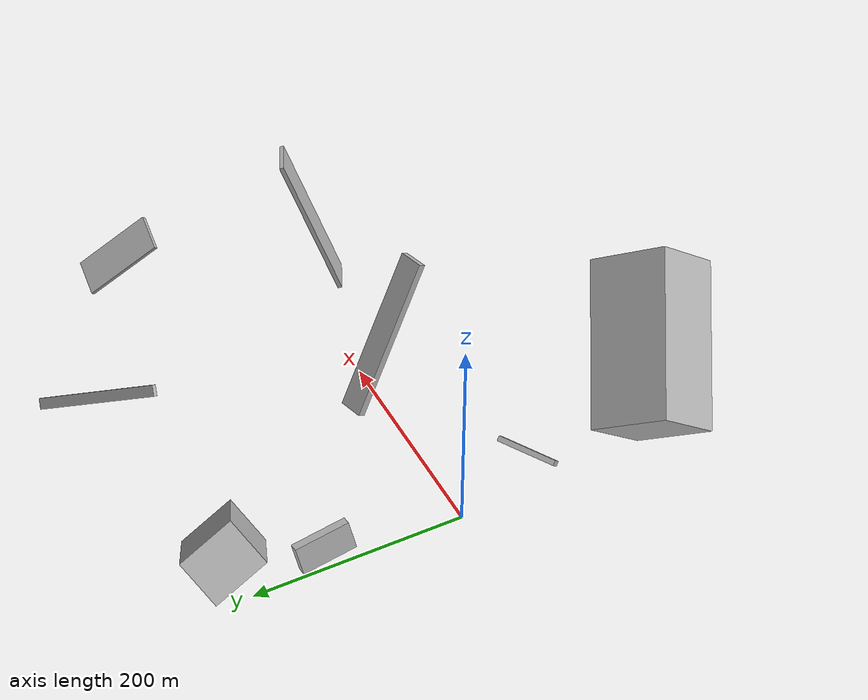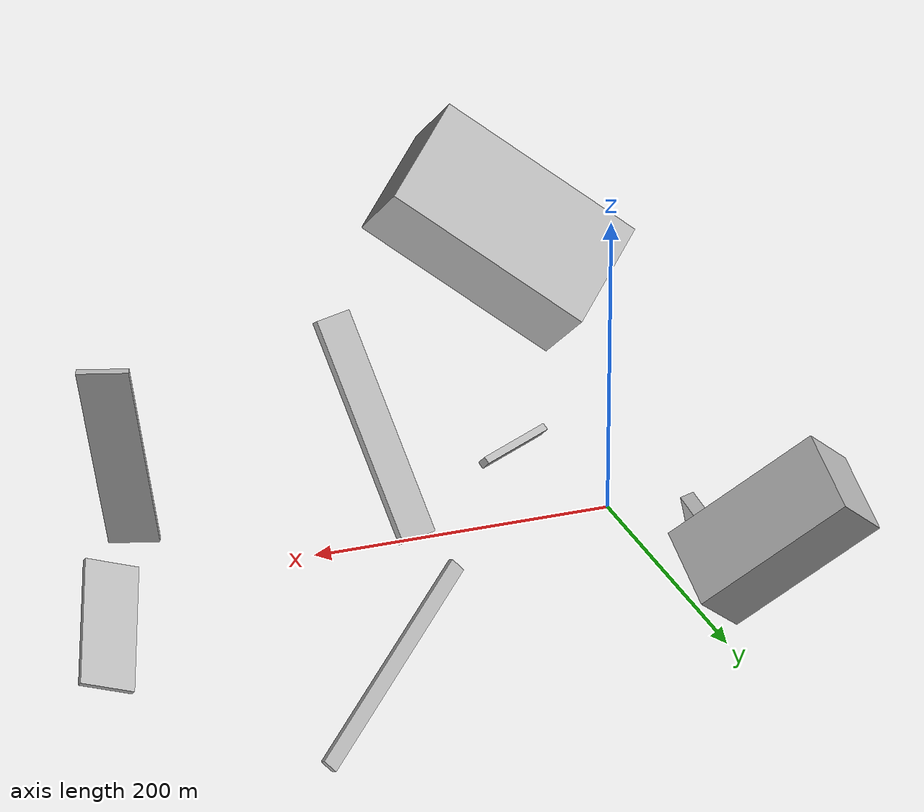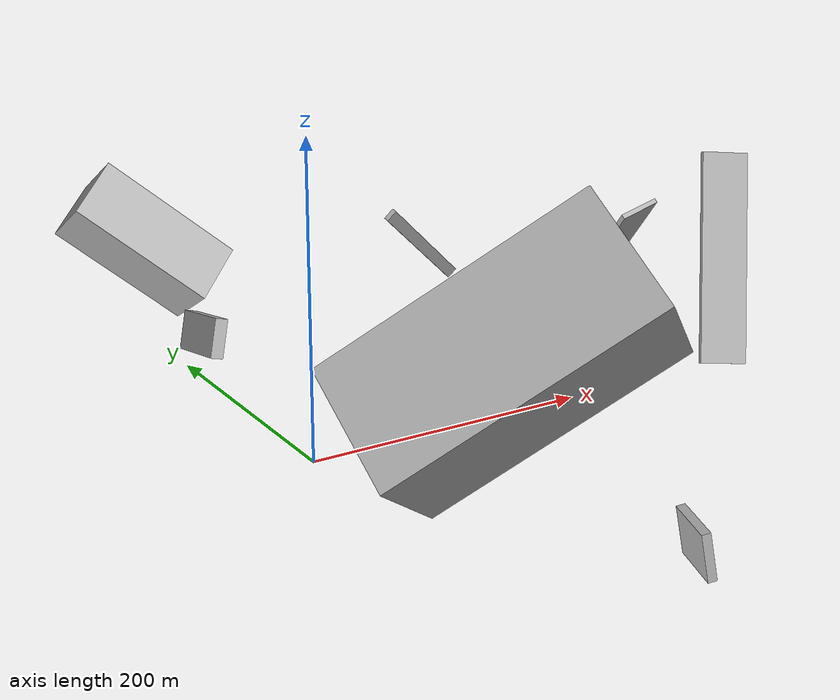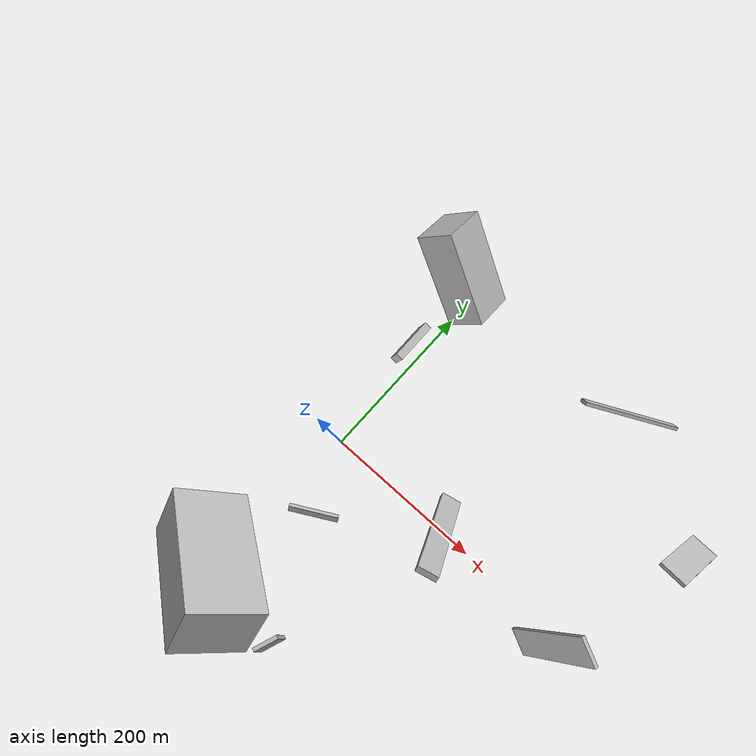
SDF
<sdf version="1.6">
 <world name="default">
  <scene>
   <sky><clouds><speed>12</speed></clouds></sky>
   <ambient>0.4 0.4 0.4 1</ambient>
   <background>0.7 0.7 0.7 1</background>
   <shadows>1</shadows>
  </scene>
  <gravity>0 0 -9.8066</gravity>
  <magnetic_field>6e-06 2.3e-05 -4.2e-05</magnetic_field>
  <physics default="0" name="default_physics" type="ode">
   <ode>
    <solver>
     <type>quick</type>
     <iters>10</iters>
     <sor>1.0</sor>
     <use_dynamic_moi_rescaling>0</use_dynamic_moi_rescaling>
    </solver>
    <constraints>
     <cfm>0</cfm>
     <erp>0.2</erp>
     <contact_max_correcting_vel>100</contact_max_correcting_vel>
     <contact_surface_layer>0.001</contact_surface_layer>
    </constraints>
   </ode>
   <max_step_size>0.004</max_step_size>
   <real_time_factor>1</real_time_factor>
   <real_time_update_rate>250</real_time_update_rate>
  </physics>
  <light name="sun" type="directional">
   <pose>0 0 10 0 0 0</pose>
   <diffuse>0.8 0.8 0.8 1</diffuse>
   <specular>0.2 0.2 0.2 1</specular>
   <attenuation>
    <range>1000</range>
    <constant>0.9</constant>
    <linear>0.01</linear>
    <quadratic>0.001</quadratic>
   </attenuation>
   <direction>-0.5 0.1 -0.9</direction>
  </light>
  <model name="building_1">
   <static>0</static>
   <pose>-14.541761782040073 135.79225901959302 31.575909759451594 -0.25634750293829256 -0.14919703621967453 -1.541545205686459</pose>
   <link name="link">
    <gravity>0</gravity>
    <pose>0 0 13.5 0 0 0</pose>
    <collision name="collision"><geometry><box><size>51 9 27</size></box></geometry></collision>
    <visual name="visual">
     <cast_shadows>0</cast_shadows>
     <geometry><box><size>51 9 27</size></box></geometry>
     <material>
      <script>
       <uri>model://HANNAS_wall/materials/scripts</uri>
       <uri>model://HANNAS_wall/materials/textures</uri>
       <name>vrc/HANNAS_wall</name>
      </script>
     </material>
    </visual>
   </link>
  </model>
  <model name="building_2">
   <static>0</static>
   <pose>229.13508241013957 243.17818851294555 45.84542454888117 -0.5373667890954604 -0.5638011278572108 -2.552182339674598</pose>
   <link name="link">
    <gravity>0</gravity>
    <pose>0 0 5.0 0 0 0</pose>
    <collision name="collision"><geometry><box><size>150 4 10</size></box></geometry></collision>
    <visual name="visual">
     <cast_shadows>0</cast_shadows>
     <geometry><box><size>150 4 10</size></box></geometry>
     <material>
      <script>
       <uri>model://HANNAS_wall/materials/scripts</uri>
       <uri>model://HANNAS_wall/materials/textures</uri>
       <name>vrc/HANNAS_wall</name>
      </script>
     </material>
    </visual>
   </link>
  </model>
  <model name="building_3">
   <static>0</static>
   <pose>103.19302330444249 -210.75096636530094 19.82707535768187 1.5960076578618685 -0.2100146629512304 -0.35035697021641166</pose>
   <link name="link">
    <gravity>0</gravity>
    <pose>0 0 15.5 0 0 0</pose>
    <collision name="collision"><geometry><box><size>5 28 31</size></box></geometry></collision>
    <visual name="visual">
     <cast_shadows>0</cast_shadows>
     <geometry><box><size>5 28 31</size></box></geometry>
     <material>
      <script>
       <uri>model://HANNAS_wall/materials/scripts</uri>
       <uri>model://HANNAS_wall/materials/textures</uri>
       <name>vrc/HANNAS_wall</name>
      </script>
     </material>
    </visual>
   </link>
  </model>
  <model name="building_4">
   <static>0</static>
   <pose>34.980960873405934 -85.92935209268808 8.973451435927949 0.08185443978891792 0.7506862186586194 2.121230783263245</pose>
   <link name="link">
    <gravity>0</gravity>
    <pose>0 0 4.0 0 0 0</pose>
    <collision name="collision"><geometry><box><size>5 59 8</size></box></geometry></collision>
    <visual name="visual">
     <cast_shadows>0</cast_shadows>
     <geometry><box><size>5 59 8</size></box></geometry>
     <material>
      <script>
       <uri>model://HANNAS_wall/materials/scripts</uri>
       <uri>model://HANNAS_wall/materials/textures</uri>
       <name>vrc/HANNAS_wall</name>
      </script>
     </material>
    </visual>
   </link>
  </model>
  <model name="building_5">
   <static>0</static>
   <pose>9.118385073328591 -211.78349882838154 100.4984742010083 0.7206923203137875 -0.5689130693239027 -2.4957843955725885</pose>
   <link name="link">
    <gravity>0</gravity>
    <pose>0 0 34.0 0 0 0</pose>
    <collision name="collision"><geometry><box><size>79 150 68</size></box></geometry></collision>
    <visual name="visual">
     <cast_shadows>0</cast_shadows>
     <geometry><box><size>79 150 68</size></box></geometry>
     <material>
      <script>
       <uri>model://HANNAS_wall/materials/scripts</uri>
       <uri>model://HANNAS_wall/materials/textures</uri>
       <name>vrc/HANNAS_wall</name>
      </script>
     </material>
    </visual>
   </link>
  </model>
  <model name="building_6">
   <static>0</static>
   <pose>-31.096273648726598 222.0207667787552 75.51415310507106 0.6597649923534298 -0.6735642698103134 2.7474552625330837</pose>
   <link name="link">
    <gravity>0</gravity>
    <pose>0 0 22.5 0 0 0</pose>
    <collision name="collision"><geometry><box><size>108 54 45</size></box></geometry></collision>
    <visual name="visual">
     <cast_shadows>0</cast_shadows>
     <geometry><box><size>108 54 45</size></box></geometry>
     <material>
      <script>
       <uri>model://HANNAS_wall/materials/scripts</uri>
       <uri>model://HANNAS_wall/materials/textures</uri>
       <name>vrc/HANNAS_wall</name>
      </script>
     </material>
    </visual>
   </link>
  </model>
  <model name="building_7">
   <static>0</static>
   <pose>170.05717937552168 -0.5208289612142769 81.06126738361283 1.3811331556120712 -0.9964137564584904 -1.1894948351205328</pose>
   <link name="link">
    <gravity>0</gravity>
    <pose>0 0 12.0 0 0 0</pose>
    <collision name="collision"><geometry><box><size>150 7 24</size></box></geometry></collision>
    <visual name="visual">
     <cast_shadows>0</cast_shadows>
     <geometry><box><size>150 7 24</size></box></geometry>
     <material>
      <script>
       <uri>model://HANNAS_wall/materials/scripts</uri>
       <uri>model://HANNAS_wall/materials/textures</uri>
       <name>vrc/HANNAS_wall</name>
      </script>
     </material>
    </visual>
   </link>
  </model>
  <model name="building_8">
   <static>0</static>
   <pose>381.99825162928437 156.371713011665 59.379602603550985 0.41453903609016496 -0.6989550035326779 -1.9304665287362575</pose>
   <link name="link">
    <gravity>0</gravity>
    <pose>0 0 2.0 0 0 0</pose>
    <collision name="collision"><geometry><box><size>80 34 4</size></box></geometry></collision>
    <visual name="visual">
     <cast_shadows>0</cast_shadows>
     <geometry><box><size>80 34 4</size></box></geometry>
     <material>
      <script>
       <uri>model://HANNAS_wall/materials/scripts</uri>
       <uri>model://HANNAS_wall/materials/textures</uri>
       <name>vrc/HANNAS_wall</name>
      </script>
     </material>
    </visual>
   </link>
  </model>
  <model name="building_9">
   <static>0</static>
   <pose>338.6596444846542 -19.2137153206924 83.8067236507742 -1.386869882889571 -1.220522846912935 0.9581899066586038</pose>
   <link name="link">
    <gravity>0</gravity>
    <pose>0 0 16.5 0 0 0</pose>
    <collision name="collision"><geometry><box><size>150 4 33</size></box></geometry></collision>
    <visual name="visual">
     <cast_shadows>0</cast_shadows>
     <geometry><box><size>150 4 33</size></box></geometry>
     <material>
      <script>
       <uri>model://HANNAS_wall/materials/scripts</uri>
       <uri>model://HANNAS_wall/materials/textures</uri>
       <name>vrc/HANNAS_wall</name>
      </script>
     </material>
    </visual>
   </link>
  </model>
 </world>
</sdf>
